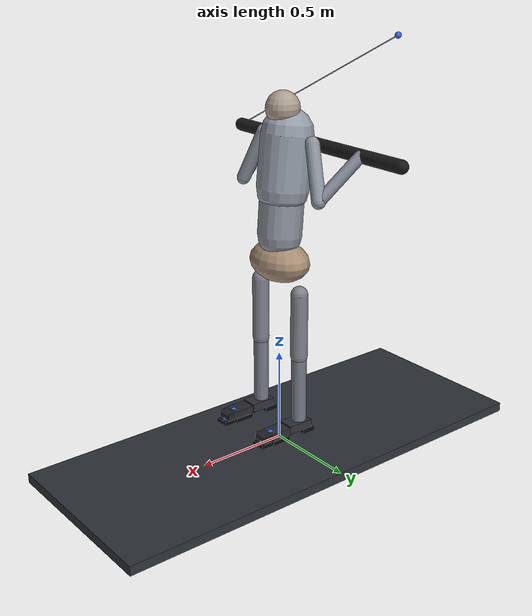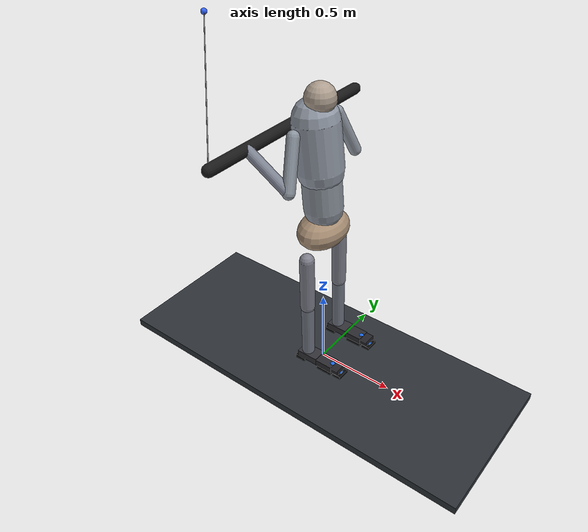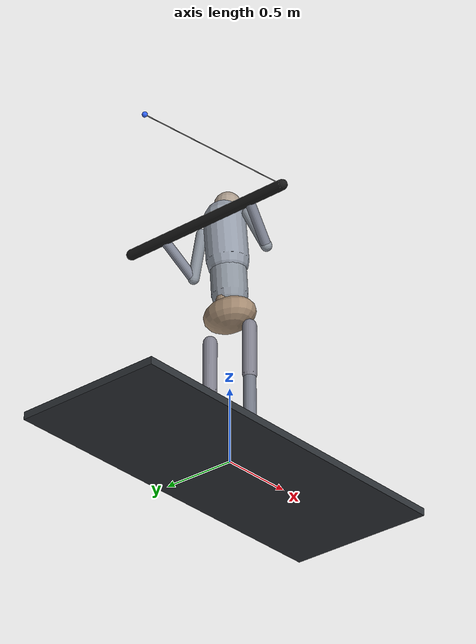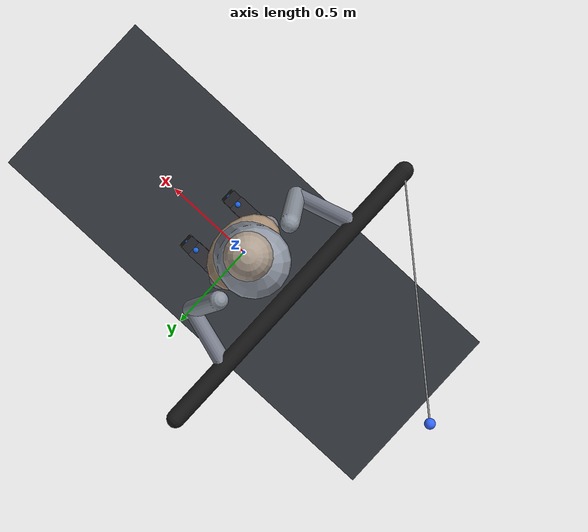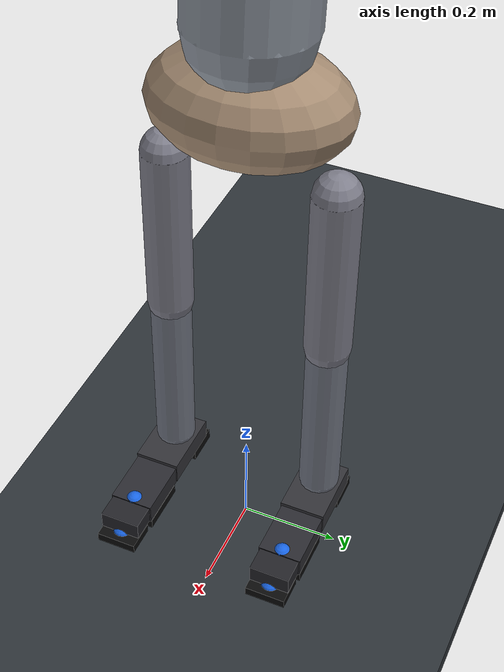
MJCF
<mujoco model="loaded_cmj_forceplate_lpt_sysid_a1_scratch">
  <compiler angle="radian" inertiafromgeom="true" autolimits="true"/>
  <option timestep="0.002" gravity="0 0 -9.81" integrator="implicitfast" iterations="100" tolerance="1e-10" cone="pyramidal"/>
  <size njmax="500" nconmax="200"/>
  <default>
    <geom friction="3.0 0.5 0.1" condim="6" solref="0.015 1" solimp="0.9 0.98 0.001 0.5 2"/>
    <joint armature="0.015" limited="true" damping="1"/>
    <site size="0.018" rgba="0.1 0.4 0.9 1"/>
    <default class="structural">
      <geom contype="0" conaffinity="0" rgba="0.55 0.58 0.62 1"/>
    </default>
    <default class="foot_contact">
      <geom contype="2" conaffinity="1" density="0" friction="3.0 0.5 0.1" condim="6" solref="0.015 1" solimp="0.9 0.98 0.001 0.5 2" rgba="0.04 0.04 0.04 1"/>
    </default>
    <default class="leg_joint">
      <joint armature="0.020" limited="true" damping="4.0" stiffness="20" solreflimit="0.01 1" solimplimit="0.9 0.98 0.001 0.5 2"/>
    </default>
    <default class="foot_passive">
      <joint armature="0.006" limited="true" damping="10" stiffness="140" springref="0" solreflimit="0.01 1" solimplimit="0.9 0.98 0.001 0.5 2"/>
    </default>
    <default class="core_joint">
      <joint armature="0.020" limited="true" damping="120" stiffness="3000" solreflimit="0.01 1" solimplimit="0.9 0.98 0.001 0.5 2"/>
    </default>
    <default class="arm_joint">
      <joint armature="0.015" limited="true" damping="40" stiffness="2500" springref="0" solreflimit="0.01 1" solimplimit="0.9 0.98 0.001 0.5 2"/>
    </default>
  </default>
  <worldbody>
    <geom name="force_plate" type="box" pos="0 0 -0.025" size="1.25 0.50 0.025" contype="1" conaffinity="2" friction="1.1 0.005 0.0001" condim="3" solref="0.015 1" solimp="0.9 0.98 0.001 0.5 2" rgba="0.18 0.20 0.22 1"/>
    <site name="lpt_anchor" pos="-0.80 0 2.10" rgba="0.2 0.4 1 1"/>
    <body name="pelvis" pos="0 0 1.00">
      <joint name="root_x" type="slide" axis="1 0 0" range="-0.45 0.45" stiffness="8000" damping="1600" springref="0"/>
      <joint name="root_z" type="slide" axis="0 0 1" range="-0.65 0.85" damping="85"/>
      <joint name="root_pitch" type="hinge" axis="0 1 0" range="-0.45 0.45" stiffness="3200" damping="300" springref="0.12"/>
      <geom name="pelvis_geom" class="structural" type="ellipsoid" pos="0 0 0.02" size="0.135 0.185 0.105" mass="11.0" rgba="0.65 0.55 0.45 1"/>
      <geom name="sacrum_geom" class="structural" type="capsule" fromto="-0.04 0 0.02 -0.05 0 0.12" size="0.055" mass="0.0" rgba="0.62 0.53 0.44 1"/>
      <site name="pelvis_com_site" pos="0 0 0"/>
      <site name="pelvis_site" pos="0 0 0.02"/>
      <site name="root_site" pos="0 0 0.02"/>
      <body name="torso" pos="0 0 0.14">
        <joint name="lumbar_pitch" class="core_joint" type="hinge" axis="0 -1 0" range="-0.35 0.30" springref="-0.06"/>
        <geom name="abdomen_geom" class="structural" type="capsule" fromto="0 0 0.02 -0.02 0 0.28" size="0.115" mass="12.0" rgba="0.55 0.58 0.62 1"/>
        <geom name="thorax_geom" class="structural" type="capsule" fromto="-0.02 0 0.26 -0.05 0 0.54" size="0.135" mass="14.15" rgba="0.58 0.61 0.66 1"/>
        <site name="lumbar_site" pos="0 0 0.02"/>
        <site name="sternum_site" pos="0.05 0 0.34"/>
        <body name="head" pos="-0.05 0 0.56">
          <geom name="neck_geom" class="structural" type="capsule" fromto="0 0 0 0.015 0 0.05" size="0.045" mass="0.6" rgba="0.60 0.62 0.66 1"/>
          <geom name="head_geom" class="structural" type="sphere" pos="0.03 0 0.11" size="0.088" mass="3.4" rgba="0.68 0.62 0.56 1"/>
          <site name="head_site" pos="0.03 0 0.11"/>
        </body>
        <body name="bar" pos="-0.23 0 0.46">
          <joint name="bar_rack_x" type="slide" axis="1 0 0" range="-0.10 0.10" stiffness="28000" damping="900"/>
          <joint name="bar_rack_z" type="slide" axis="0 0 1" range="-0.10 0.10" stiffness="28000" damping="900"/>
          <joint name="bar_rack_pitch" type="hinge" axis="0 1 0" range="-0.18 0.18" stiffness="6025" damping="247"/>
          <geom name="bar_capsule" class="structural" type="capsule" fromto="0 -0.62 0 0 0.62 0" size="0.035" mass="20.0" rgba="0.10 0.10 0.10 1"/>
          <site name="bar_lpt_site" pos="0 -0.62 0"/>
          <site name="left_bar_grip_site" pos="0 0.36 0"/>
          <site name="right_bar_grip_site" pos="0 -0.36 0"/>
        </body>
        <body name="left_upper_arm" pos="-0.05 0.19 0.52">
          <joint name="left_shoulder" class="arm_joint" type="hinge" axis="0 -1 0" range="-0.7 0.7"/>
          <geom name="left_upper_arm_geom" class="structural" type="capsule" fromto="0 0 0 0.05 0.11 -0.26" size="0.036" mass="2.10" rgba="0.55 0.58 0.62 1"/>
          <body name="left_forearm" pos="0.05 0.11 -0.26">
            <joint name="left_elbow" class="arm_joint" type="hinge" axis="0 -1 0" range="-0.7 0.7"/>
            <geom name="left_forearm_geom" class="structural" type="capsule" fromto="0 0 0 -0.22 0.05 0.20" size="0.032" mass="1.70" rgba="0.50 0.52 0.58 1"/>
            <site name="left_hand_site" pos="-0.22 0.05 0.20"/>
          </body>
        </body>
        <body name="right_upper_arm" pos="-0.05 -0.19 0.52">
          <joint name="right_shoulder" class="arm_joint" type="hinge" axis="0 -1 0" range="-0.7 0.7"/>
          <geom name="right_upper_arm_geom" class="structural" type="capsule" fromto="0 0 0 0.05 -0.11 -0.26" size="0.036" mass="2.10" rgba="0.55 0.58 0.62 1"/>
          <body name="right_forearm" pos="0.05 -0.11 -0.26">
            <joint name="right_elbow" class="arm_joint" type="hinge" axis="0 -1 0" range="-0.7 0.7"/>
            <geom name="right_forearm_geom" class="structural" type="capsule" fromto="0 0 0 -0.22 -0.05 0.20" size="0.032" mass="1.70" rgba="0.50 0.52 0.58 1"/>
            <site name="right_hand_site" pos="-0.22 -0.05 0.20"/>
          </body>
        </body>
      </body>
      <body name="left_thigh" pos="0 0.16 -0.12">
        <joint name="left_hip" class="leg_joint" type="hinge" axis="0 -1 0" range="-1.1 1.35" stiffness="25" damping="4" springref="0.08"/>
        <site name="left_hip_site" pos="0 0 0"/>
        <geom name="left_thigh_geom" class="structural" type="capsule" fromto="0 0 0 0 0 -0.34" size="0.045" mass="7.5" rgba="0.50 0.50 0.55 1"/>
        <body name="left_shank" pos="0 0 -0.34">
          <joint name="left_knee" class="leg_joint" type="hinge" axis="0 -1 0" range="-1.95 0.05" stiffness="35" damping="5" springref="-0.12"/>
          <site name="left_knee_site" pos="0 0 0"/>
          <geom name="left_shank_geom" class="structural" type="capsule" fromto="0 0 0 0 0 -0.36" size="0.040" mass="3.75" rgba="0.45 0.47 0.52 1"/>
          <body name="left_hindfoot" pos="0.02 0 -0.38">
            <joint name="left_ankle" class="leg_joint" type="hinge" axis="0 -1 0" range="-0.7 0.9" stiffness="45" damping="5" springref="0.04"/>
            <site name="left_ankle_site" pos="0 0 0"/>
            <geom name="left_hindfoot_geom" class="structural" type="box" pos="0.00 0 -0.010" size="0.070 0.045 0.022" mass="1.03125" rgba="0.20 0.20 0.22 1"/>
            <geom name="left_heel" class="foot_contact" type="box" pos="-0.055 0 -0.045" size="0.035 0.043 0.012"/>
            <site name="left_heel_site" pos="-0.055 0 -0.045" size="0.024"/>
            <body name="left_forefoot" pos="0.095 0 -0.005">
              <joint name="left_forefoot_rocker" class="foot_passive" type="hinge" axis="0 -1 0" range="-0.30 0.06" stiffness="95" damping="3.5" springref="0"/>
              <geom name="left_forefoot_geom_struct" class="structural" type="box" pos="0.025 0 -0.010" size="0.065 0.043 0.020" mass="0.5625" rgba="0.17 0.17 0.19 1"/>
              <geom name="left_forefoot" class="foot_contact" type="box" pos="0.035 0 -0.042" size="0.052 0.043 0.010"/>
              <site name="left_forefoot_site" pos="0.035 0 -0.042" size="0.023"/>
              <body name="left_toe" pos="0.075 0 0">
                <joint name="left_mtp" class="foot_passive" type="hinge" axis="0 -1 0" range="-0.10 0.80" stiffness="8" damping="0.8" springref="0"/>
                <site name="left_mtp_site" pos="0 0 0"/>
                <geom name="left_toe_geom_struct" class="structural" type="box" pos="0.025 0 -0.010" size="0.040 0.040 0.018" mass="0.28125" rgba="0.14 0.14 0.16 1"/>
                <geom name="left_toe" class="foot_contact" type="box" pos="0.055 0 -0.040" size="0.030 0.040 0.009"/>
                <site name="left_toe_site" pos="0.055 0 -0.040" size="0.021"/>
              </body>
            </body>
          </body>
        </body>
      </body>
      <body name="right_thigh" pos="0 -0.16 -0.12">
        <joint name="right_hip" class="leg_joint" type="hinge" axis="0 -1 0" range="-1.1 1.35" stiffness="25" damping="4" springref="0.08"/>
        <site name="right_hip_site" pos="0 0 0"/>
        <geom name="right_thigh_geom" class="structural" type="capsule" fromto="0 0 0 0 0 -0.34" size="0.045" mass="7.5" rgba="0.50 0.50 0.55 1"/>
        <body name="right_shank" pos="0 0 -0.34">
          <joint name="right_knee" class="leg_joint" type="hinge" axis="0 -1 0" range="-1.95 0.05" stiffness="35" damping="5" springref="-0.12"/>
          <site name="right_knee_site" pos="0 0 0"/>
          <geom name="right_shank_geom" class="structural" type="capsule" fromto="0 0 0 0 0 -0.36" size="0.040" mass="3.75" rgba="0.45 0.47 0.52 1"/>
          <body name="right_hindfoot" pos="0.02 0 -0.38">
            <joint name="right_ankle" class="leg_joint" type="hinge" axis="0 -1 0" range="-0.7 0.9" stiffness="45" damping="5" springref="0.04"/>
            <site name="right_ankle_site" pos="0 0 0"/>
            <geom name="right_hindfoot_geom" class="structural" type="box" pos="0.00 0 -0.010" size="0.070 0.045 0.022" mass="1.03125" rgba="0.20 0.20 0.22 1"/>
            <geom name="right_heel" class="foot_contact" type="box" pos="-0.055 0 -0.045" size="0.035 0.043 0.012"/>
            <site name="right_heel_site" pos="-0.055 0 -0.045" size="0.024"/>
            <body name="right_forefoot" pos="0.095 0 -0.005">
              <joint name="right_forefoot_rocker" class="foot_passive" type="hinge" axis="0 -1 0" range="-0.30 0.06" stiffness="95" damping="3.5" springref="0"/>
              <geom name="right_forefoot_geom_struct" class="structural" type="box" pos="0.025 0 -0.010" size="0.065 0.043 0.020" mass="0.5625" rgba="0.17 0.17 0.19 1"/>
              <geom name="right_forefoot" class="foot_contact" type="box" pos="0.035 0 -0.042" size="0.052 0.043 0.010"/>
              <site name="right_forefoot_site" pos="0.035 0 -0.042" size="0.023"/>
              <body name="right_toe" pos="0.075 0 0">
                <joint name="right_mtp" class="foot_passive" type="hinge" axis="0 -1 0" range="-0.10 0.80" stiffness="8" damping="0.8" springref="0"/>
                <site name="right_mtp_site" pos="0 0 0"/>
                <geom name="right_toe_geom_struct" class="structural" type="box" pos="0.025 0 -0.010" size="0.040 0.040 0.018" mass="0.28125" rgba="0.14 0.14 0.16 1"/>
                <geom name="right_toe" class="foot_contact" type="box" pos="0.055 0 -0.040" size="0.030 0.040 0.009"/>
                <site name="right_toe_site" pos="0.055 0 -0.040" size="0.021"/>
              </body>
            </body>
          </body>
        </body>
      </body>
    </body>
  </worldbody>
  <contact>
    <pair name="left_heel_ground" geom1="force_plate" geom2="left_heel" condim="6" friction="3.0 0.5 0.1" solref="0.015 1" solimp="0.9 0.98 0.001 0.5 2"/>
    <pair name="left_forefoot_ground" geom1="force_plate" geom2="left_forefoot" condim="6" friction="3.0 0.5 0.1" solref="0.015 1" solimp="0.9 0.98 0.001 0.5 2"/>
    <pair name="left_toe_ground" geom1="force_plate" geom2="left_toe" condim="6" friction="3.0 0.5 0.1" solref="0.015 1" solimp="0.9 0.98 0.001 0.5 2"/>
    <pair name="right_heel_ground" geom1="force_plate" geom2="right_heel" condim="6" friction="3.0 0.5 0.1" solref="0.015 1" solimp="0.9 0.98 0.001 0.5 2"/>
    <pair name="right_forefoot_ground" geom1="force_plate" geom2="right_forefoot" condim="6" friction="3.0 0.5 0.1" solref="0.015 1" solimp="0.9 0.98 0.001 0.5 2"/>
    <pair name="right_toe_ground" geom1="force_plate" geom2="right_toe" condim="6" friction="3.0 0.5 0.1" solref="0.015 1" solimp="0.9 0.98 0.001 0.5 2"/>
    <exclude body1="left_hindfoot" body2="left_forefoot"/>
    <exclude body1="left_forefoot" body2="left_toe"/>
    <exclude body1="right_hindfoot" body2="right_forefoot"/>
    <exclude body1="right_forefoot" body2="right_toe"/>
  </contact>
  <tendon>
    <spatial name="left_hand_grip" limited="true" range="0 0.11" stiffness="18000" damping="600">
      <site site="left_hand_site"/>
      <site site="left_bar_grip_site"/>
    </spatial>
    <spatial name="right_hand_grip" limited="true" range="0 0.11" stiffness="18000" damping="600">
      <site site="right_hand_site"/>
      <site site="right_bar_grip_site"/>
    </spatial>
    <spatial name="lpt_tether" limited="false" stiffness="0" damping="0">
      <site site="lpt_anchor"/>
      <site site="bar_lpt_site"/>
    </spatial>
    <fixed name="hip_lumbar_hinge" limited="false" stiffness="2200" damping="20" springlength="-0.067200">
      <joint joint="lumbar_pitch" coef="1"/>
      <joint joint="left_hip" coef="0.18"/>
      <joint joint="right_hip" coef="0.18"/>
    </fixed>
  </tendon>
  <actuator>
    <motor name="left_hip_torque" joint="left_hip" gear="1" ctrlrange="-1300 1300"/>
    <motor name="left_knee_torque" joint="left_knee" gear="1" ctrlrange="-2000 2000"/>
    <motor name="left_ankle_torque" joint="left_ankle" gear="1" ctrlrange="-1300 1300"/>
    <motor name="right_hip_torque" joint="right_hip" gear="1" ctrlrange="-1300 1300"/>
    <motor name="right_knee_torque" joint="right_knee" gear="1" ctrlrange="-2000 2000"/>
    <motor name="right_ankle_torque" joint="right_ankle" gear="1" ctrlrange="-1300 1300"/>
  </actuator>
  <sensor>
    <touch name="left_heel_touch" site="left_heel_site"/>
    <touch name="left_forefoot_touch" site="left_forefoot_site"/>
    <touch name="left_toe_touch" site="left_toe_site"/>
    <touch name="right_heel_touch" site="right_heel_site"/>
    <touch name="right_forefoot_touch" site="right_forefoot_site"/>
    <touch name="right_toe_touch" site="right_toe_site"/>
    <framepos name="left_toe_pos" objtype="site" objname="left_toe_site"/>
    <framelinvel name="left_toe_vel" objtype="site" objname="left_toe_site"/>
    <framepos name="right_toe_pos" objtype="site" objname="right_toe_site"/>
    <framelinvel name="right_toe_vel" objtype="site" objname="right_toe_site"/>
  </sensor>
</mujoco>
